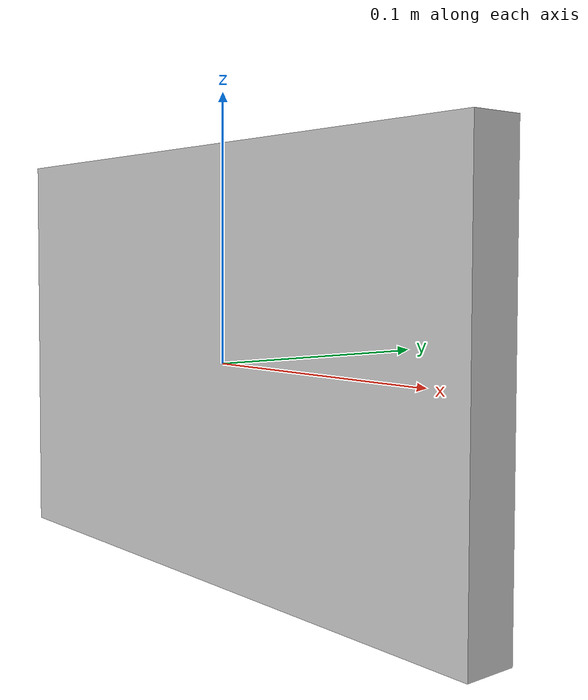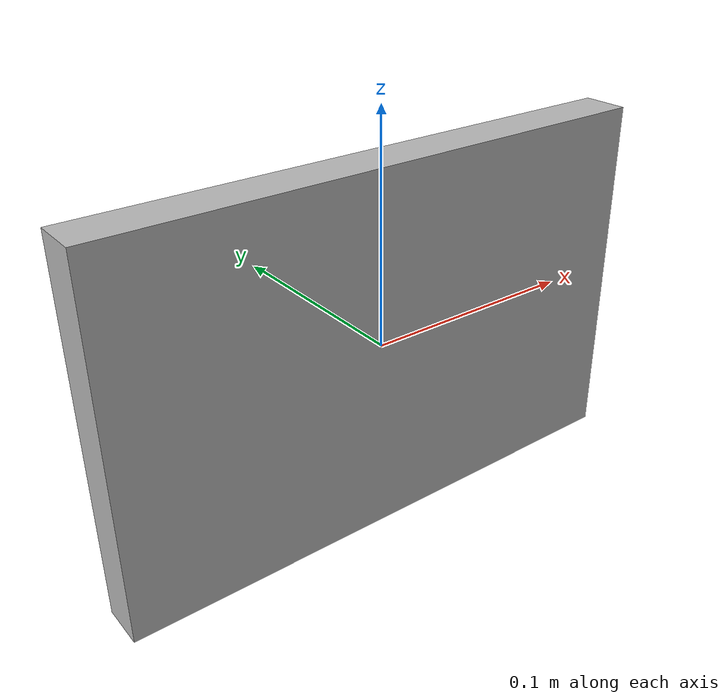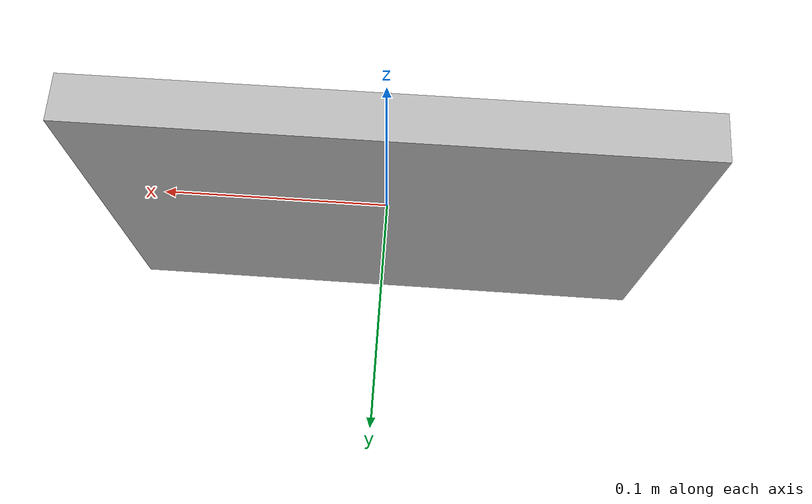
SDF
<?xml version="1.0"?>
<sdf version="1.8">
  <model name="erc_book">
    <link name="book_base_link">

      <inertial>
        <pose>0 0 0 0 0 0</pose>
        <mass>0.3</mass>
        <inertia>
          <ixx>0.000662500</ixx>
          <ixy>0</ixy>
          <ixz>0</ixz>
          <iyy>0.002202500</iyy>
          <iyz>0</iyz>
          <izz>0.001585000</izz>
        </inertia>
      </inertial>

      <visual name="base_link_book_visual">
        <pose>0 0 0 0 0 0</pose>
        <geometry>
          <box>
            <size>0.25 0.02 0.16</size>
          </box>
        </geometry>
        <material>
          <ambient>BOOK_COLOUR_PLACEHOLDER</ambient>
          <diffuse>BOOK_COLOUR_PLACEHOLDER</diffuse>
        </material>
      </visual>

      <collision name="base_link_book_collision">
        <pose>0 0 0 0 0 0</pose>
        <max_contacts>4</max_contacts>

        <geometry>
          <box>
            <size>0.25 0.02 0.16</size>
          </box>
        </geometry>
        <!-- Explicit friction so books sit on the shelf without sliding and the
             gripper can hold them. Was previously inheriting the world default. -->
        <surface>
          <friction>
            <ode>
              <mu>10.0</mu>
              <mu2>10.0</mu2>
            </ode>
          </friction>
          <contact>
            <ode>
              <!-- Softer contact than a rigid default reduces solver stress and
                   jitter for many resting books; tune if grasps feel spongy. -->
              <kp>100000.0</kp>
              <kd>1.0</kd>
            </ode>
          </contact>
        </surface>
      </collision>

    </link>
  </model>
</sdf>
